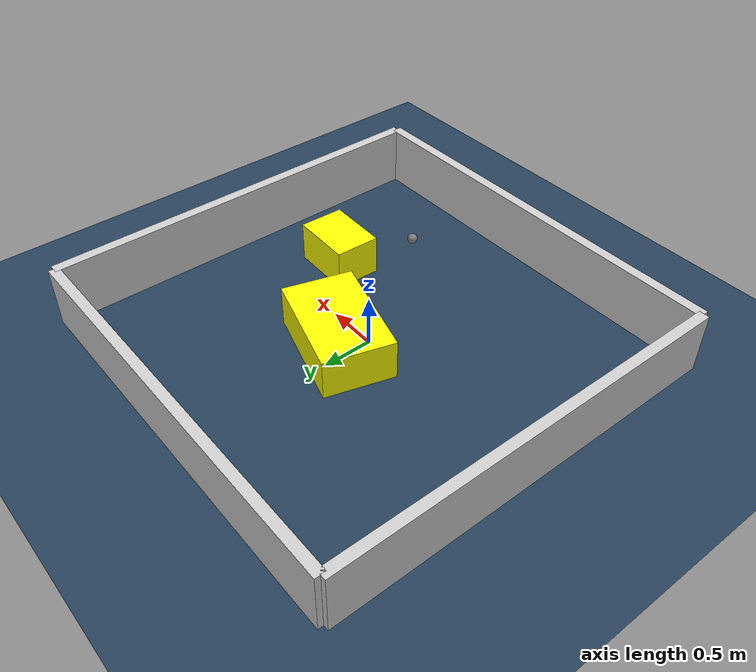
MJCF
<?xml version="1.0" ?>
<mujoco model="generated_environment">
  <option timestep="0.01" integrator="RK4" cone="elliptic"/>
  <default>
    <geom density="1"/>
  </default>
  <asset>
    <texture builtin="gradient" height="3072" rgb1="0.3 0.5 0.7" rgb2="0 0 0" type="skybox" width="512"/>
    <texture builtin="checker" height="300" mark="edge" markrgb="0.8 0.8 0.8" name="groundplane" rgb1="0.2 0.3 0.4" rgb2="0.1 0.2 0.3" type="2d" width="300"/>
    <material name="groundplane" reflectance="0.2" texrepeat="5 5" texture="groundplane" texuniform="true"/>
    <material name="robot" rgba="0.0 1.0 0.0 1"/>
  </asset>
  <worldbody>
    <light dir="0 0 -1" directional="true" pos="0 0 1.5"/>
    <geom condim="4" friction="1.0 0.005 0.001" material="groundplane" name="floor" size="0 0 0.05" type="plane"/>
    <body name="walls">
      <geom name="wall_1" condim="4" pos="-2.0 0.0 0.3" rgba="0.800000011920929 0.800000011920929 0.800000011920929 1.0" size="0.05 2.0 0.3" type="box"/>
      <geom name="wall_2" condim="4" pos="2.0 0.0 0.3" rgba="0.800000011920929 0.800000011920929 0.800000011920929 1.0" size="0.05 2.0 0.3" type="box"/>
      <geom name="wall_3" condim="4" pos="0.0 -2.0 0.3" rgba="0.800000011920929 0.800000011920929 0.800000011920929 1.0" size="2.0 0.05 0.3" type="box"/>
      <geom name="wall_4" condim="4" pos="0.0 2.0 0.3" rgba="0.800000011920929 0.800000011920929 0.800000011920929 1.0" size="2.0 0.05 0.3" type="box"/>
    </body>
    <body name="robot">
      <joint name="joint_x" type="slide" pos="0 0 0" axis="1 0 0"/>
      <joint name="joint_y" type="slide" pos="0 0 0" axis="0 1 0"/>
      <geom name="robot" type="sphere" pos="0.7587695866883757 -1.1666448491462649 0.2" size="0.05" mass="5." friction="1.0 0.005 0.0001" condim="4"/>
      <site name="sensor_ball"/>
    </body>
    <body name="obstacle_1_movable">
      <geom name="obstacle_1_movable" condim="4" pos="0.10858731039544267 0.26880868382261025 0.2" euler="0 0 343.64198724773604" friction="1.0 0.005 0.001" rgba="1 1 0 1" size="0.5297110994163376 0.34217271884366784 0.2" type="box" mass="0.1"/>
      <joint type="free"/>
    </body>
    <body name="obstacle_2_movable">
      <geom name="obstacle_2_movable" condim="4" pos="1.0887105289215158 -0.499473746433428 0.2" euler="0 0 268.09016629508596" friction="1.0 0.005 0.001" rgba="1 1 0 1" size="0.2238216185220087 0.3072873072745854 0.2" type="box" mass="0.1"/>
      <joint type="free"/>
    </body>
  </worldbody>
  <actuator>
    <motor name="actuator_x" joint="joint_x" gear="1" ctrlrange="-1 1"/>
    <motor name="actuator_y" joint="joint_y" gear="1" ctrlrange="-1 1"/>
  </actuator>
</mujoco>
